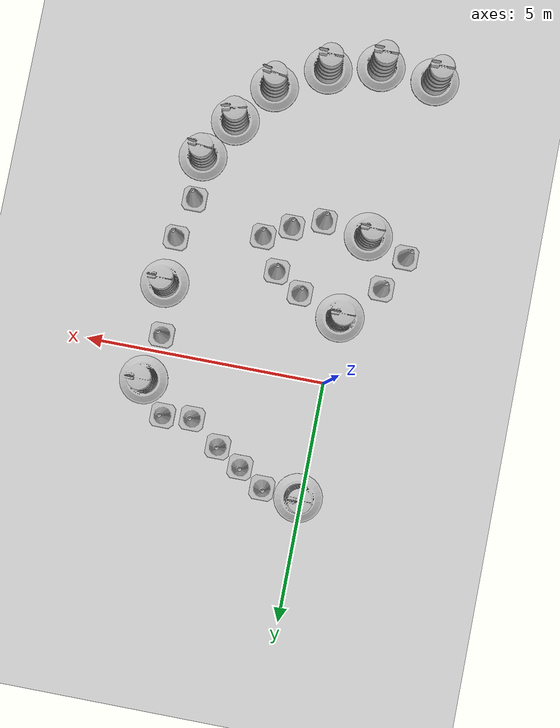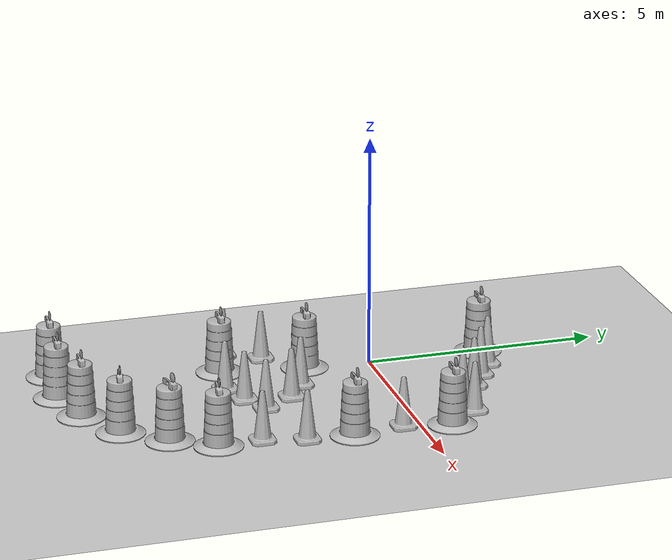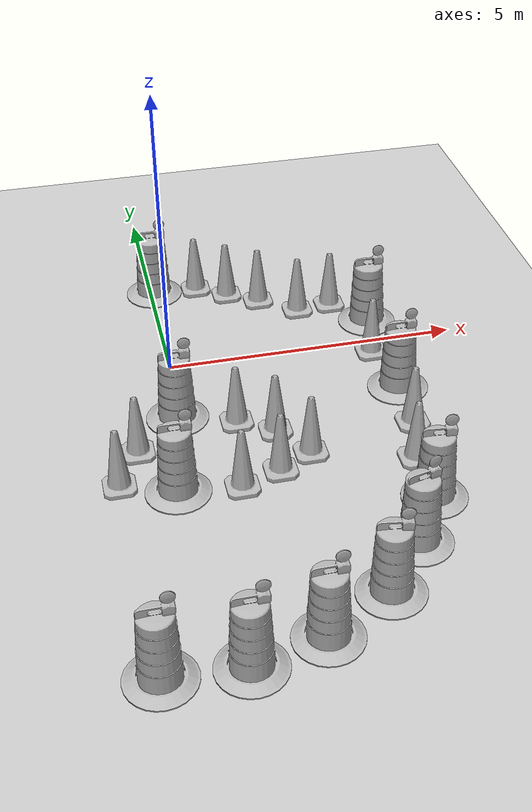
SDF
<sdf version="1.7">
 <world name="default">
  <light name="sun" type="directional">
   <pose>0 0 10 0 -0 0</pose>
   <diffuse>0.8 0.8 0.8 1</diffuse>
   <specular>0.2 0.2 0.2 1</specular>
   <attenuation>
    <range>1000</range>
    <constant>0.9</constant>
    <linear>0.01</linear>
    <quadratic>0.001</quadratic>
   </attenuation>
   <direction>-0.5 0.1 -0.9</direction>
   <spot><inner_angle>0</inner_angle><outer_angle>0</outer_angle><falloff>0</falloff></spot>
  </light>
  <model name="ground_plane">
   <static>1</static>
   <link name="link">
    <collision name="collision">
     <geometry><plane><normal>0 0 1</normal><size>100 100</size></plane></geometry>
     <surface>
      <contact><collide_bitmask>65535</collide_bitmask></contact>
      <friction><ode><mu>100</mu><mu2>50</mu2></ode></friction>
     </surface>
    </collision>
    <visual name="visual">
     <cast_shadows>0</cast_shadows>
     <geometry><plane><normal>0 0 1</normal><size>100 100</size></plane></geometry>
     <material>
      <script><uri>file://media/materials/scripts/gazebo.material</uri><name>Gazebo/Grey</name></script>
     </material>
    </visual>
   </link>
  </model>
  <gravity>0 0 -9.8</gravity>
  <magnetic_field>6e-06 2.3e-05 -4.2e-05</magnetic_field>
  <atmosphere type="adiabatic"/>
  <physics type="ode">
   <max_step_size>0.001</max_step_size>
   <real_time_factor>1</real_time_factor>
   <real_time_update_rate>1000</real_time_update_rate>
  </physics>
  <scene><ambient>0.4 0.4 0.4 1</ambient><background>0.7 0.7 0.7 1</background><shadows>1</shadows></scene>
  <spherical_coordinates>
   <surface_model>EARTH_WGS84</surface_model>
   <latitude_deg>0</latitude_deg>
   <longitude_deg>0</longitude_deg>
   <elevation>0</elevation>
   <heading_deg>0</heading_deg>
  </spherical_coordinates>
  <model name="Construction Barrel">
   <link name="link">
    <inertial>
     <pose>0 0 0.4 0 -0 0</pose>
     <mass>500</mass>
     <inertia><ixx>51.2096</ixx><iyy>51.2096</iyy><izz>25</izz><ixy>0</ixy><ixz>0</ixz><iyz>0</iyz></inertia>
    </inertial>
    <collision name="collision">
     <geometry><mesh><uri>model://construction_barrel/meshes/construction_barrel.dae</uri></mesh></geometry>
    </collision>
    <visual name="visual">
     <geometry><mesh><uri>model://construction_barrel/meshes/construction_barrel.dae</uri></mesh></geometry>
    </visual>
   </link>
   <pose>0.065072 2.42216 -2e-06 -7e-06 -4e-06 -5.5e-05</pose>
  </model>
  <model name="Construction Cone">
   <link name="link">
    <collision name="collision">
     <geometry>
      <mesh><scale>10 10 10</scale><uri>model://construction_cone/meshes/construction_cone.dae</uri></mesh>
     </geometry>
    </collision>
    <visual name="visual">
     <geometry>
      <mesh><scale>10 10 10</scale><uri>model://construction_cone/meshes/construction_cone.dae</uri></mesh>
     </geometry>
    </visual>
    <inertial>
     <inertia><ixx>1</ixx><ixy>0</ixy><ixz>0</ixz><iyy>1</iyy><iyz>0</iyz><izz>1</izz></inertia>
     <mass>1</mass>
    </inertial>
   </link>
   <pose>0.838995 2.36009 -6e-06 -4e-06 1e-06 0</pose>
  </model>
  <model name="Construction Cone_0">
   <link name="link">
    <collision name="collision">
     <geometry>
      <mesh><scale>10 10 10</scale><uri>model://construction_cone/meshes/construction_cone.dae</uri></mesh>
     </geometry>
    </collision>
    <visual name="visual">
     <geometry>
      <mesh><scale>10 10 10</scale><uri>model://construction_cone/meshes/construction_cone.dae</uri></mesh>
     </geometry>
    </visual>
    <inertial>
     <inertia><ixx>1</ixx><ixy>0</ixy><ixz>0</ixz><iyy>1</iyy><iyz>0</iyz><izz>1</izz></inertia>
     <mass>1</mass>
    </inertial>
   </link>
   <pose>1.36388 2.02484 -0 0 -1e-06 0</pose>
  </model>
  <model name="Construction Cone_1">
   <link name="link">
    <collision name="collision">
     <geometry>
      <mesh><scale>10 10 10</scale><uri>model://construction_cone/meshes/construction_cone.dae</uri></mesh>
     </geometry>
    </collision>
    <visual name="visual">
     <geometry>
      <mesh><scale>10 10 10</scale><uri>model://construction_cone/meshes/construction_cone.dae</uri></mesh>
     </geometry>
    </visual>
    <inertial>
     <inertia><ixx>1</ixx><ixy>0</ixy><ixz>0</ixz><iyy>1</iyy><iyz>0</iyz><izz>1</izz></inertia>
     <mass>1</mass>
    </inertial>
   </link>
   <pose>1.8957 1.69757 -0 0 -1e-06 0</pose>
  </model>
  <model name="Construction Cone_2">
   <link name="link">
    <collision name="collision">
     <geometry>
      <mesh><scale>10 10 10</scale><uri>model://construction_cone/meshes/construction_cone.dae</uri></mesh>
     </geometry>
    </collision>
    <visual name="visual">
     <geometry>
      <mesh><scale>10 10 10</scale><uri>model://construction_cone/meshes/construction_cone.dae</uri></mesh>
     </geometry>
    </visual>
    <inertial>
     <inertia><ixx>1</ixx><ixy>0</ixy><ixz>0</ixz><iyy>1</iyy><iyz>0</iyz><izz>1</izz></inertia>
     <mass>1</mass>
    </inertial>
   </link>
   <pose>2.52978 1.22712 -0 0 -1e-06 0</pose>
  </model>
  <model name="Construction Barrel_0">
   <link name="link">
    <inertial>
     <pose>0 0 0.4 0 -0 0</pose>
     <mass>500</mass>
     <inertia><ixx>51.2096</ixx><iyy>51.2096</iyy><izz>25</izz><ixy>0</ixy><ixz>0</ixz><iyz>0</iyz></inertia>
    </inertial>
    <collision name="collision">
     <geometry><mesh><uri>model://construction_barrel/meshes/construction_barrel.dae</uri></mesh></geometry>
    </collision>
    <visual name="visual">
     <geometry><mesh><uri>model://construction_barrel/meshes/construction_barrel.dae</uri></mesh></geometry>
    </visual>
   </link>
   <pose>3.67514 0.623652 -2e-06 -7e-06 -4e-06 -4.9e-05</pose>
  </model>
  <model name="Construction Cone_3">
   <link name="link">
    <collision name="collision">
     <geometry>
      <mesh><scale>10 10 10</scale><uri>model://construction_cone/meshes/construction_cone.dae</uri></mesh>
     </geometry>
    </collision>
    <visual name="visual">
     <geometry>
      <mesh><scale>10 10 10</scale><uri>model://construction_cone/meshes/construction_cone.dae</uri></mesh>
     </geometry>
    </visual>
    <inertial>
     <inertia><ixx>1</ixx><ixy>0</ixy><ixz>0</ixz><iyy>1</iyy><iyz>0</iyz><izz>1</izz></inertia>
     <mass>1</mass>
    </inertial>
   </link>
   <pose>3.14341 1.27825 -6e-06 6e-06 -0 0</pose>
  </model>
  <model name="Construction Cone_4">
   <link name="link">
    <collision name="collision">
     <geometry>
      <mesh><scale>10 10 10</scale><uri>model://construction_cone/meshes/construction_cone.dae</uri></mesh>
     </geometry>
    </collision>
    <visual name="visual">
     <geometry>
      <mesh><scale>10 10 10</scale><uri>model://construction_cone/meshes/construction_cone.dae</uri></mesh>
     </geometry>
    </visual>
    <inertial>
     <inertia><ixx>1</ixx><ixy>0</ixy><ixz>0</ixz><iyy>1</iyy><iyz>0</iyz><izz>1</izz></inertia>
     <mass>1</mass>
    </inertial>
   </link>
   <pose>3.48091 -0.358103 -0 0 -0 0</pose>
  </model>
  <model name="Construction Barrel_1">
   <link name="link">
    <inertial>
     <pose>0 0 0.4 0 -0 0</pose>
     <mass>500</mass>
     <inertia><ixx>51.2096</ixx><iyy>51.2096</iyy><izz>25</izz><ixy>0</ixy><ixz>0</ixz><iyz>0</iyz></inertia>
    </inertial>
    <collision name="collision">
     <geometry><mesh><uri>model://construction_barrel/meshes/construction_barrel.dae</uri></mesh></geometry>
    </collision>
    <visual name="visual">
     <geometry><mesh><uri>model://construction_barrel/meshes/construction_barrel.dae</uri></mesh></geometry>
    </visual>
   </link>
   <pose>3.63422 -1.43201 -2e-06 -7e-06 -4e-06 -4.6e-05</pose>
  </model>
  <model name="Construction Barrel_2">
   <link name="link">
    <inertial>
     <pose>0 0 0.4 0 -0 0</pose>
     <mass>500</mass>
     <inertia><ixx>51.2096</ixx><iyy>51.2096</iyy><izz>25</izz><ixy>0</ixy><ixz>0</ixz><iyz>0</iyz></inertia>
    </inertial>
    <collision name="collision">
     <geometry><mesh><uri>model://construction_barrel/meshes/construction_barrel.dae</uri></mesh></geometry>
    </collision>
    <visual name="visual">
     <geometry><mesh><uri>model://construction_barrel/meshes/construction_barrel.dae</uri></mesh></geometry>
    </visual>
   </link>
   <pose>-0.088472 -1.41154 -2e-06 -7e-06 -4e-06 -4.4e-05</pose>
  </model>
  <model name="Construction Cone_5">
   <link name="link">
    <collision name="collision">
     <geometry>
      <mesh><scale>10 10 10</scale><uri>model://construction_cone/meshes/construction_cone.dae</uri></mesh>
     </geometry>
    </collision>
    <visual name="visual">
     <geometry>
      <mesh><scale>10 10 10</scale><uri>model://construction_cone/meshes/construction_cone.dae</uri></mesh>
     </geometry>
    </visual>
    <inertial>
     <inertia><ixx>1</ixx><ixy>0</ixy><ixz>0</ixz><iyy>1</iyy><iyz>0</iyz><izz>1</izz></inertia>
     <mass>1</mass>
    </inertial>
   </link>
   <pose>0.82184 -1.75922 -0 0 -0 0</pose>
  </model>
  <model name="Construction Cone_6">
   <link name="link">
    <collision name="collision">
     <geometry>
      <mesh><scale>10 10 10</scale><uri>model://construction_cone/meshes/construction_cone.dae</uri></mesh>
     </geometry>
    </collision>
    <visual name="visual">
     <geometry>
      <mesh><scale>10 10 10</scale><uri>model://construction_cone/meshes/construction_cone.dae</uri></mesh>
     </geometry>
    </visual>
    <inertial>
     <inertia><ixx>1</ixx><ixy>0</ixy><ixz>0</ixz><iyy>1</iyy><iyz>0</iyz><izz>1</izz></inertia>
     <mass>1</mass>
    </inertial>
   </link>
   <pose>1.38434 -2.11717 -0 0 -1e-06 0</pose>
  </model>
  <model name="Construction Cone_7">
   <link name="link">
    <collision name="collision">
     <geometry>
      <mesh><scale>10 10 10</scale><uri>model://construction_cone/meshes/construction_cone.dae</uri></mesh>
     </geometry>
    </collision>
    <visual name="visual">
     <geometry>
      <mesh><scale>10 10 10</scale><uri>model://construction_cone/meshes/construction_cone.dae</uri></mesh>
     </geometry>
    </visual>
    <inertial>
     <inertia><ixx>1</ixx><ixy>0</ixy><ixz>0</ixz><iyy>1</iyy><iyz>0</iyz><izz>1</izz></inertia>
     <mass>1</mass>
    </inertial>
   </link>
   <pose>1.80365 -2.78194 -0 0 -1e-06 0</pose>
  </model>
  <model name="Construction Cone_8">
   <link name="link">
    <collision name="collision">
     <geometry>
      <mesh><scale>10 10 10</scale><uri>model://construction_cone/meshes/construction_cone.dae</uri></mesh>
     </geometry>
    </collision>
    <visual name="visual">
     <geometry>
      <mesh><scale>10 10 10</scale><uri>model://construction_cone/meshes/construction_cone.dae</uri></mesh>
     </geometry>
    </visual>
    <inertial>
     <inertia><ixx>1</ixx><ixy>0</ixy><ixz>0</ixz><iyy>1</iyy><iyz>0</iyz><izz>1</izz></inertia>
     <mass>1</mass>
    </inertial>
   </link>
   <pose>1.25138 -3.08875 -0 0 -0 0</pose>
  </model>
  <model name="Construction Cone_9">
   <link name="link">
    <collision name="collision">
     <geometry>
      <mesh><scale>10 10 10</scale><uri>model://construction_cone/meshes/construction_cone.dae</uri></mesh>
     </geometry>
    </collision>
    <visual name="visual">
     <geometry>
      <mesh><scale>10 10 10</scale><uri>model://construction_cone/meshes/construction_cone.dae</uri></mesh>
     </geometry>
    </visual>
    <inertial>
     <inertia><ixx>1</ixx><ixy>0</ixy><ixz>0</ixz><iyy>1</iyy><iyz>0</iyz><izz>1</izz></inertia>
     <mass>1</mass>
    </inertial>
   </link>
   <pose>0.607069 -3.3342 -0 0 -1e-06 0</pose>
  </model>
  <model name="Construction Barrel_3">
   <link name="link">
    <inertial>
     <pose>0 0 0.4 0 -0 0</pose>
     <mass>500</mass>
     <inertia><ixx>51.2096</ixx><iyy>51.2096</iyy><izz>25</izz><ixy>0</ixy><ixz>0</ixz><iyz>0</iyz></inertia>
    </inertial>
    <collision name="collision">
     <geometry><mesh><uri>model://construction_barrel/meshes/construction_barrel.dae</uri></mesh></geometry>
    </collision>
    <visual name="visual">
     <geometry><mesh><uri>model://construction_barrel/meshes/construction_barrel.dae</uri></mesh></geometry>
    </visual>
   </link>
   <pose>-0.354394 -3.20128 -1e-06 4e-06 -1e-06 -3.1e-05</pose>
  </model>
  <model name="Construction Cone_10">
   <link name="link">
    <collision name="collision">
     <geometry>
      <mesh><scale>10 10 10</scale><uri>model://construction_cone/meshes/construction_cone.dae</uri></mesh>
     </geometry>
    </collision>
    <visual name="visual">
     <geometry>
      <mesh><scale>10 10 10</scale><uri>model://construction_cone/meshes/construction_cone.dae</uri></mesh>
     </geometry>
    </visual>
    <inertial>
     <inertia><ixx>1</ixx><ixy>0</ixy><ixz>0</ixz><iyy>1</iyy><iyz>0</iyz><izz>1</izz></inertia>
     <mass>1</mass>
    </inertial>
   </link>
   <pose>-0.824736 -2.1683 -1e-05 0 -0 0</pose>
  </model>
  <model name="Construction Cone_11">
   <link name="link">
    <collision name="collision">
     <geometry>
      <mesh><scale>10 10 10</scale><uri>model://construction_cone/meshes/construction_cone.dae</uri></mesh>
     </geometry>
    </collision>
    <visual name="visual">
     <geometry>
      <mesh><scale>10 10 10</scale><uri>model://construction_cone/meshes/construction_cone.dae</uri></mesh>
     </geometry>
    </visual>
    <inertial>
     <inertia><ixx>1</ixx><ixy>0</ixy><ixz>0</ixz><iyy>1</iyy><iyz>0</iyz><izz>1</izz></inertia>
     <mass>1</mass>
    </inertial>
   </link>
   <pose>-1.20314 -2.90466 -1e-05 -0 -0 -0</pose>
  </model>
  <model name="Construction Cone_12">
   <link name="link">
    <collision name="collision">
     <geometry>
      <mesh><scale>10 10 10</scale><uri>model://construction_cone/meshes/construction_cone.dae</uri></mesh>
     </geometry>
    </collision>
    <visual name="visual">
     <geometry>
      <mesh><scale>10 10 10</scale><uri>model://construction_cone/meshes/construction_cone.dae</uri></mesh>
     </geometry>
    </visual>
    <inertial>
     <inertia><ixx>1</ixx><ixy>0</ixy><ixz>0</ixz><iyy>1</iyy><iyz>0</iyz><izz>1</izz></inertia>
     <mass>1</mass>
    </inertial>
   </link>
   <pose>3.58318 -2.41376 -1e-05 -1e-06 0 0</pose>
  </model>
  <model name="Construction Cone_13">
   <link name="link">
    <collision name="collision">
     <geometry>
      <mesh><scale>10 10 10</scale><uri>model://construction_cone/meshes/construction_cone.dae</uri></mesh>
     </geometry>
    </collision>
    <visual name="visual">
     <geometry>
      <mesh><scale>10 10 10</scale><uri>model://construction_cone/meshes/construction_cone.dae</uri></mesh>
     </geometry>
    </visual>
    <inertial>
     <inertia><ixx>1</ixx><ixy>0</ixy><ixz>0</ixz><iyy>1</iyy><iyz>0</iyz><izz>1</izz></inertia>
     <mass>1</mass>
    </inertial>
   </link>
   <pose>3.35818 -3.28307 -0 0 -1e-06 0</pose>
  </model>
  <model name="Construction Barrel_4">
   <link name="link">
    <inertial>
     <pose>0 0 0.4 0 -0 0</pose>
     <mass>500</mass>
     <inertia><ixx>51.2096</ixx><iyy>51.2096</iyy><izz>25</izz><ixy>0</ixy><ixz>0</ixz><iyz>0</iyz></inertia>
    </inertial>
    <collision name="collision">
     <geometry><mesh><uri>model://construction_barrel/meshes/construction_barrel.dae</uri></mesh></geometry>
    </collision>
    <visual name="visual">
     <geometry><mesh><uri>model://construction_barrel/meshes/construction_barrel.dae</uri></mesh></geometry>
    </visual>
   </link>
   <pose>3.36176 -4.19563 -2e-06 -0 6e-06 -0.100442</pose>
  </model>
  <model name="Construction Barrel_5">
   <link name="link">
    <inertial>
     <pose>0 0 0.4 0 -0 0</pose>
     <mass>500</mass>
     <inertia><ixx>51.2096</ixx><iyy>51.2096</iyy><izz>25</izz><ixy>0</ixy><ixz>0</ixz><iyz>0</iyz></inertia>
    </inertial>
    <collision name="collision">
     <geometry><mesh><uri>model://construction_barrel/meshes/construction_barrel.dae</uri></mesh></geometry>
    </collision>
    <visual name="visual">
     <geometry><mesh><uri>model://construction_barrel/meshes/construction_barrel.dae</uri></mesh></geometry>
    </visual>
   </link>
   <pose>2.8395 -5.06673 -3e-06 -6e-06 -5e-06 0.221255</pose>
  </model>
  <model name="Construction Barrel_6">
   <link name="link">
    <inertial>
     <pose>0 0 0.4 0 -0 0</pose>
     <mass>500</mass>
     <inertia><ixx>51.2096</ixx><iyy>51.2096</iyy><izz>25</izz><ixy>0</ixy><ixz>0</ixz><iyz>0</iyz></inertia>
    </inertial>
    <collision name="collision">
     <geometry><mesh><uri>model://construction_barrel/meshes/construction_barrel.dae</uri></mesh></geometry>
    </collision>
    <visual name="visual">
     <geometry><mesh><uri>model://construction_barrel/meshes/construction_barrel.dae</uri></mesh></geometry>
    </visual>
   </link>
   <pose>2.16538 -5.92287 -0 2e-06 -1e-06 -0.158085</pose>
  </model>
  <model name="Construction Barrel_7">
   <link name="link">
    <inertial>
     <pose>0 0 0.4 0 -0 0</pose>
     <mass>500</mass>
     <inertia><ixx>51.2096</ixx><iyy>51.2096</iyy><izz>25</izz><ixy>0</ixy><ixz>0</ixz><iyz>0</iyz></inertia>
    </inertial>
    <collision name="collision">
     <geometry><mesh><uri>model://construction_barrel/meshes/construction_barrel.dae</uri></mesh></geometry>
    </collision>
    <visual name="visual">
     <geometry><mesh><uri>model://construction_barrel/meshes/construction_barrel.dae</uri></mesh></geometry>
    </visual>
   </link>
   <pose>1.12613 -6.50582 -0 0 -0 -1.1e-05</pose>
  </model>
  <model name="Construction Barrel_8">
   <link name="link">
    <inertial>
     <pose>0 0 0.4 0 -0 0</pose>
     <mass>500</mass>
     <inertia><ixx>51.2096</ixx><iyy>51.2096</iyy><izz>25</izz><ixy>0</ixy><ixz>0</ixz><iyz>0</iyz></inertia>
    </inertial>
    <collision name="collision">
     <geometry><mesh><uri>model://construction_barrel/meshes/construction_barrel.dae</uri></mesh></geometry>
    </collision>
    <visual name="visual">
     <geometry><mesh><uri>model://construction_barrel/meshes/construction_barrel.dae</uri></mesh></geometry>
    </visual>
   </link>
   <pose>0.042065 -6.77172 -0 0 -0 -7e-06</pose>
  </model>
  <model name="Construction Barrel_9">
   <link name="link">
    <inertial>
     <pose>0 0 0.4 0 -0 0</pose>
     <mass>500</mass>
     <inertia><ixx>51.2096</ixx><iyy>51.2096</iyy><izz>25</izz><ixy>0</ixy><ixz>0</ixz><iyz>0</iyz></inertia>
    </inertial>
    <collision name="collision">
     <geometry><mesh><uri>model://construction_barrel/meshes/construction_barrel.dae</uri></mesh></geometry>
    </collision>
    <visual name="visual">
     <geometry><mesh><uri>model://construction_barrel/meshes/construction_barrel.dae</uri></mesh></geometry>
    </visual>
   </link>
   <pose>-1.12384 -6.68991 -1e-06 2e-06 -1e-06 -1.7e-05</pose>
  </model>
 </world>
</sdf>
